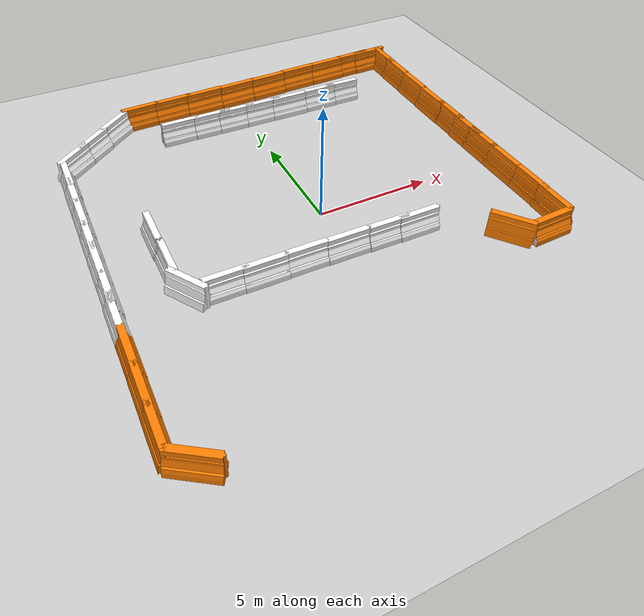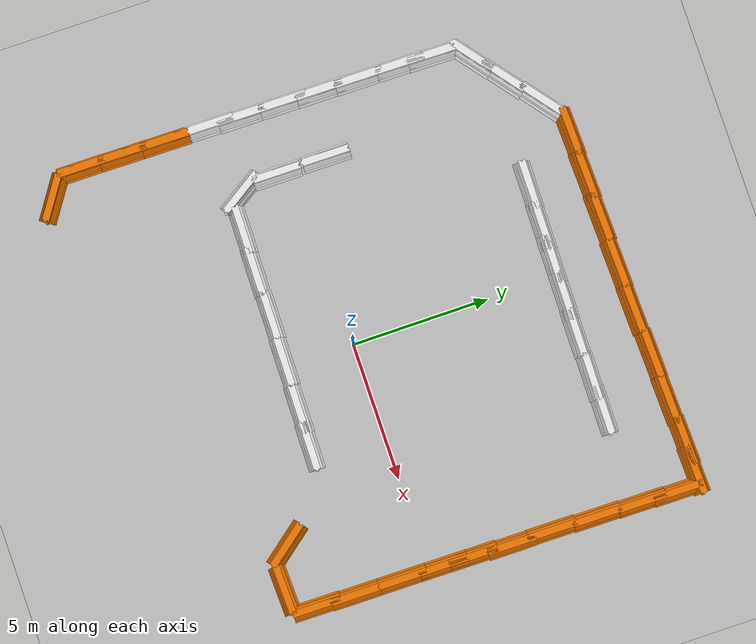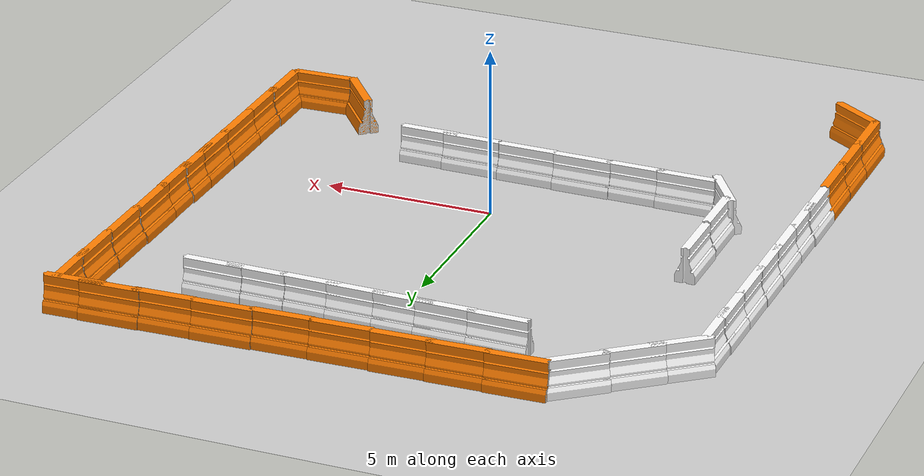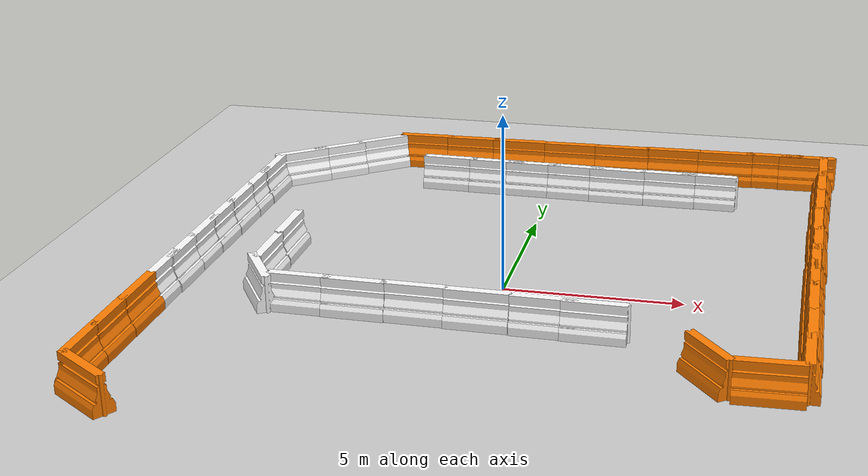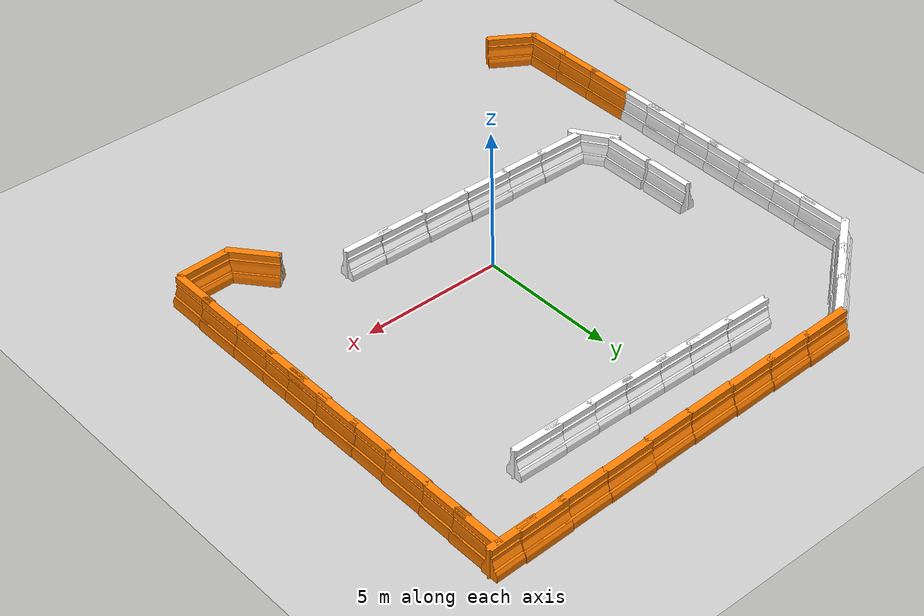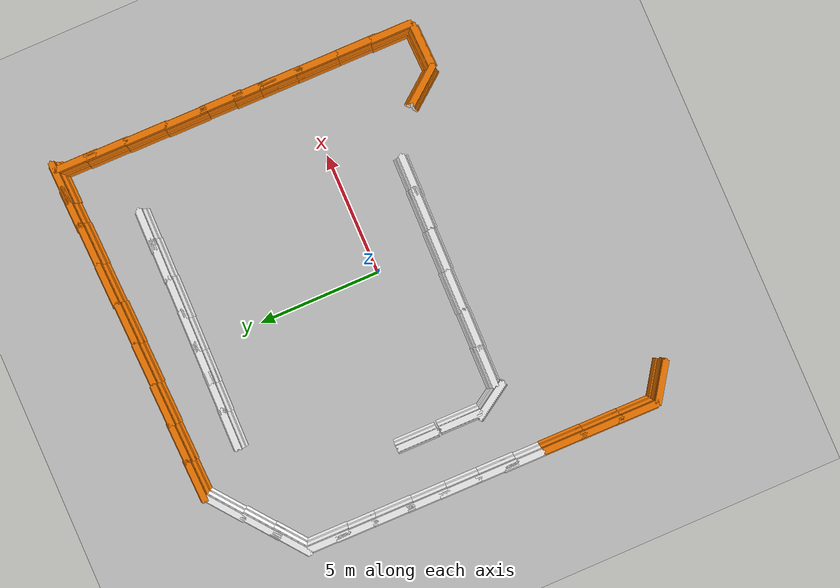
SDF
<sdf version="1.7">
 <world name="default">
  <light name="sun" type="directional">
   <pose>0 0 10 0 -0 0</pose>
   <diffuse>0.8 0.8 0.8 1</diffuse>
   <specular>0.2 0.2 0.2 1</specular>
   <attenuation>
    <range>1000</range>
    <constant>0.9</constant>
    <linear>0.01</linear>
    <quadratic>0.001</quadratic>
   </attenuation>
   <direction>-0.5 0.1 -0.9</direction>
   <spot><inner_angle>0</inner_angle><outer_angle>0</outer_angle><falloff>0</falloff></spot>
  </light>
  <model name="ground_plane">
   <static>1</static>
   <link name="link">
    <collision name="collision">
     <geometry><plane><normal>0 0 1</normal><size>100 100</size></plane></geometry>
     <surface><friction><ode><mu>100</mu><mu2>50</mu2></ode></friction></surface>
    </collision>
    <visual name="visual">
     <cast_shadows>0</cast_shadows>
     <geometry><plane><normal>0 0 1</normal><size>100 100</size></plane></geometry>
     <material>
      <script><uri>file://media/materials/scripts/gazebo.material</uri><name>Gazebo/Grey</name></script>
     </material>
    </visual>
   </link>
  </model>
  <gravity>0 0 -9.8</gravity>
  <magnetic_field>6e-06 2.3e-05 -4.2e-05</magnetic_field>
  <atmosphere type="adiabatic"/>
  <physics type="ode">
   <max_step_size>0.001</max_step_size>
   <real_time_factor>1</real_time_factor>
   <real_time_update_rate>1000</real_time_update_rate>
  </physics>
  <scene><ambient>0.4 0.4 0.4 1</ambient><background>0.7 0.7 0.7 1</background><shadows>1</shadows></scene>
  <spherical_coordinates>
   <surface_model>EARTH_WGS84</surface_model>
   <latitude_deg>0</latitude_deg>
   <longitude_deg>0</longitude_deg>
   <elevation>0</elevation>
   <heading_deg>0</heading_deg>
  </spherical_coordinates>
  <model name="drc_practice_organge_jersey_barrier_clone_0">
   <static>1</static>
   <link name="link">
    <visual name="visual">
     <geometry>
      <mesh><uri>model://drc_practice_orange_jersey_barrier/meshes/jersey_barrier.dae</uri></mesh>
     </geometry>
    </visual>
    <collision name="collision">
     <geometry>
      <mesh><uri>model://drc_practice_orange_jersey_barrier/meshes/jersey_barrier.dae</uri></mesh>
     </geometry>
    </collision>
   </link>
   <pose>-3.02649 9.66264 0 0 -0 1.60557</pose>
  </model>
  <model name="drc_practice_organge_jersey_barrier_clone_1">
   <static>1</static>
   <link name="link">
    <visual name="visual">
     <geometry>
      <mesh><uri>model://drc_practice_orange_jersey_barrier/meshes/jersey_barrier.dae</uri></mesh>
     </geometry>
    </visual>
    <collision name="collision">
     <geometry>
      <mesh><uri>model://drc_practice_orange_jersey_barrier/meshes/jersey_barrier.dae</uri></mesh>
     </geometry>
    </collision>
   </link>
   <pose>-1.44785 9.68082 0 0 -0 1.60557</pose>
  </model>
  <model name="drc_practice_organge_jersey_barrier_clone_2">
   <static>1</static>
   <link name="link">
    <visual name="visual">
     <geometry>
      <mesh><uri>model://drc_practice_orange_jersey_barrier/meshes/jersey_barrier.dae</uri></mesh>
     </geometry>
    </visual>
    <collision name="collision">
     <geometry>
      <mesh><uri>model://drc_practice_orange_jersey_barrier/meshes/jersey_barrier.dae</uri></mesh>
     </geometry>
    </collision>
   </link>
   <pose>0.297516 9.6936 0 0 -0 1.60557</pose>
  </model>
  <model name="drc_practice_organge_jersey_barrier_clone_3">
   <static>1</static>
   <link name="link">
    <visual name="visual">
     <geometry>
      <mesh><uri>model://drc_practice_orange_jersey_barrier/meshes/jersey_barrier.dae</uri></mesh>
     </geometry>
    </visual>
    <collision name="collision">
     <geometry>
      <mesh><uri>model://drc_practice_orange_jersey_barrier/meshes/jersey_barrier.dae</uri></mesh>
     </geometry>
    </collision>
   </link>
   <pose>1.99063 9.72333 0 0 -0 1.60557</pose>
  </model>
  <model name="drc_practice_organge_jersey_barrier_clone_4">
   <static>1</static>
   <link name="link">
    <visual name="visual">
     <geometry>
      <mesh><uri>model://drc_practice_orange_jersey_barrier/meshes/jersey_barrier.dae</uri></mesh>
     </geometry>
    </visual>
    <collision name="collision">
     <geometry>
      <mesh><uri>model://drc_practice_orange_jersey_barrier/meshes/jersey_barrier.dae</uri></mesh>
     </geometry>
    </collision>
   </link>
   <pose>3.67816 9.81078 0 0 -0 1.60557</pose>
  </model>
  <model name="drc_practice_organge_jersey_barrier_clone_5">
   <static>1</static>
   <link name="link">
    <visual name="visual">
     <geometry>
      <mesh><uri>model://drc_practice_orange_jersey_barrier/meshes/jersey_barrier.dae</uri></mesh>
     </geometry>
    </visual>
    <collision name="collision">
     <geometry>
      <mesh><uri>model://drc_practice_orange_jersey_barrier/meshes/jersey_barrier.dae</uri></mesh>
     </geometry>
    </collision>
   </link>
   <pose>5.39564 9.84492 0 0 -0 1.60557</pose>
  </model>
  <model name="drc_practice_organge_jersey_barrier_clone_10">
   <static>1</static>
   <link name="link">
    <visual name="visual">
     <geometry>
      <mesh><uri>model://drc_practice_orange_jersey_barrier/meshes/jersey_barrier.dae</uri></mesh>
     </geometry>
    </visual>
    <collision name="collision">
     <geometry>
      <mesh><uri>model://drc_practice_orange_jersey_barrier/meshes/jersey_barrier.dae</uri></mesh>
     </geometry>
    </collision>
   </link>
   <pose>5.95251 -4.45042 0 0 -0 0.674723</pose>
  </model>
  <model name="drc_practice_organge_jersey_barrier_clone_11">
   <static>1</static>
   <link name="link">
    <visual name="visual">
     <geometry>
      <mesh><uri>model://drc_practice_orange_jersey_barrier/meshes/jersey_barrier.dae</uri></mesh>
     </geometry>
    </visual>
    <collision name="collision">
     <geometry>
      <mesh><uri>model://drc_practice_orange_jersey_barrier/meshes/jersey_barrier.dae</uri></mesh>
     </geometry>
    </collision>
   </link>
   <pose>7.41453 -5.03428 0 0 -0 1.60557</pose>
  </model>
  <model name="drc_practice_organge_jersey_barrier_2_clone">
   <static>1</static>
   <link name="link">
    <visual name="visual">
     <geometry>
      <mesh><uri>model://drc_practice_orange_jersey_barrier/meshes/jersey_barrier.dae</uri></mesh>
     </geometry>
    </visual>
    <collision name="collision">
     <geometry>
      <mesh><uri>model://drc_practice_orange_jersey_barrier/meshes/jersey_barrier.dae</uri></mesh>
     </geometry>
    </collision>
   </link>
   <pose>8.32513 -4.14328 0 0 -0 0</pose>
  </model>
  <model name="drc_practice_organge_jersey_barrier_2_clone_0">
   <static>1</static>
   <link name="link">
    <visual name="visual">
     <geometry>
      <mesh><uri>model://drc_practice_orange_jersey_barrier/meshes/jersey_barrier.dae</uri></mesh>
     </geometry>
    </visual>
    <collision name="collision">
     <geometry>
      <mesh><uri>model://drc_practice_orange_jersey_barrier/meshes/jersey_barrier.dae</uri></mesh>
     </geometry>
    </collision>
   </link>
   <pose>8.36213 -2.72465 0 0 -0 0</pose>
  </model>
  <model name="drc_practice_organge_jersey_barrier_2_clone_1">
   <static>1</static>
   <link name="link">
    <visual name="visual">
     <geometry>
      <mesh><uri>model://drc_practice_orange_jersey_barrier/meshes/jersey_barrier.dae</uri></mesh>
     </geometry>
    </visual>
    <collision name="collision">
     <geometry>
      <mesh><uri>model://drc_practice_orange_jersey_barrier/meshes/jersey_barrier.dae</uri></mesh>
     </geometry>
    </collision>
   </link>
   <pose>8.36656 -0.993456 0 0 -0 0</pose>
  </model>
  <model name="drc_practice_organge_jersey_barrier_2_clone_2">
   <static>1</static>
   <link name="link">
    <visual name="visual">
     <geometry>
      <mesh><uri>model://drc_practice_orange_jersey_barrier/meshes/jersey_barrier.dae</uri></mesh>
     </geometry>
    </visual>
    <collision name="collision">
     <geometry>
      <mesh><uri>model://drc_practice_orange_jersey_barrier/meshes/jersey_barrier.dae</uri></mesh>
     </geometry>
    </collision>
   </link>
   <pose>8.38099 0.514424 0 0 -0 0</pose>
  </model>
  <model name="drc_practice_organge_jersey_barrier_2_clone_3">
   <static>1</static>
   <link name="link">
    <visual name="visual">
     <geometry>
      <mesh><uri>model://drc_practice_orange_jersey_barrier/meshes/jersey_barrier.dae</uri></mesh>
     </geometry>
    </visual>
    <collision name="collision">
     <geometry>
      <mesh><uri>model://drc_practice_orange_jersey_barrier/meshes/jersey_barrier.dae</uri></mesh>
     </geometry>
    </collision>
   </link>
   <pose>8.39415 1.6096 0 0 -0 0</pose>
  </model>
  <model name="drc_practice_organge_jersey_barrier_2_clone_4">
   <static>1</static>
   <link name="link">
    <visual name="visual">
     <geometry>
      <mesh><uri>model://drc_practice_orange_jersey_barrier/meshes/jersey_barrier.dae</uri></mesh>
     </geometry>
    </visual>
    <collision name="collision">
     <geometry>
      <mesh><uri>model://drc_practice_orange_jersey_barrier/meshes/jersey_barrier.dae</uri></mesh>
     </geometry>
    </collision>
   </link>
   <pose>8.44175 3.00351 0 0 -0 0</pose>
  </model>
  <model name="drc_practice_organge_jersey_barrier_2_clone_5">
   <static>1</static>
   <link name="link">
    <visual name="visual">
     <geometry>
      <mesh><uri>model://drc_practice_orange_jersey_barrier/meshes/jersey_barrier.dae</uri></mesh>
     </geometry>
    </visual>
    <collision name="collision">
     <geometry>
      <mesh><uri>model://drc_practice_orange_jersey_barrier/meshes/jersey_barrier.dae</uri></mesh>
     </geometry>
    </collision>
   </link>
   <pose>8.43429 4.5052 0 0 -0 0</pose>
  </model>
  <model name="drc_practice_organge_jersey_barrier_2_clone_6">
   <static>1</static>
   <link name="link">
    <visual name="visual">
     <geometry>
      <mesh><uri>model://drc_practice_orange_jersey_barrier/meshes/jersey_barrier.dae</uri></mesh>
     </geometry>
    </visual>
    <collision name="collision">
     <geometry>
      <mesh><uri>model://drc_practice_orange_jersey_barrier/meshes/jersey_barrier.dae</uri></mesh>
     </geometry>
    </collision>
   </link>
   <pose>8.47465 6.15354 0 0 -0 0</pose>
  </model>
  <model name="drc_practice_organge_jersey_barrier_2_clone_7">
   <static>1</static>
   <link name="link">
    <visual name="visual">
     <geometry>
      <mesh><uri>model://drc_practice_orange_jersey_barrier/meshes/jersey_barrier.dae</uri></mesh>
     </geometry>
    </visual>
    <collision name="collision">
     <geometry>
      <mesh><uri>model://drc_practice_orange_jersey_barrier/meshes/jersey_barrier.dae</uri></mesh>
     </geometry>
    </collision>
   </link>
   <pose>8.50919 7.81032 0 0 -0 0</pose>
  </model>
  <model name="drc_practice_organge_jersey_barrier_2_clone_8">
   <static>1</static>
   <link name="link">
    <visual name="visual">
     <geometry>
      <mesh><uri>model://drc_practice_orange_jersey_barrier/meshes/jersey_barrier.dae</uri></mesh>
     </geometry>
    </visual>
    <collision name="collision">
     <geometry>
      <mesh><uri>model://drc_practice_orange_jersey_barrier/meshes/jersey_barrier.dae</uri></mesh>
     </geometry>
    </collision>
   </link>
   <pose>8.54199 9.1117 0 0 -0 0</pose>
  </model>
  <model name="drc_practice_organge_jersey_barrier_clone_10_clone">
   <static>1</static>
   <link name="link">
    <visual name="visual">
     <geometry>
      <mesh><uri>model://drc_practice_orange_jersey_barrier/meshes/jersey_barrier.dae</uri></mesh>
     </geometry>
    </visual>
    <collision name="collision">
     <geometry>
      <mesh><uri>model://drc_practice_orange_jersey_barrier/meshes/jersey_barrier.dae</uri></mesh>
     </geometry>
    </collision>
   </link>
   <pose>6.95366 9.92012 0 0 -0 1.60557</pose>
  </model>
  <model name="drc_practice_organge_jersey_barrier_clone_10_clone_0">
   <static>1</static>
   <link name="link">
    <visual name="visual">
     <geometry>
      <mesh><uri>model://drc_practice_orange_jersey_barrier/meshes/jersey_barrier.dae</uri></mesh>
     </geometry>
    </visual>
    <collision name="collision">
     <geometry>
      <mesh><uri>model://drc_practice_orange_jersey_barrier/meshes/jersey_barrier.dae</uri></mesh>
     </geometry>
    </collision>
   </link>
   <pose>8.00924 9.91532 0 0 -0 1.60557</pose>
  </model>
  <model name="drc_practice_white_jersey_barrier">
   <static>1</static>
   <link name="link">
    <visual name="visual">
     <geometry>
      <mesh><uri>model://drc_practice_white_jersey_barrier/meshes/jersey_barrier.dae</uri></mesh>
     </geometry>
    </visual>
    <collision name="collision">
     <geometry>
      <mesh><uri>model://drc_practice_white_jersey_barrier/meshes/jersey_barrier.dae</uri></mesh>
     </geometry>
    </collision>
   </link>
   <pose>-8.77723 5.87423 0 0 -0 0</pose>
  </model>
  <model name="drc_practice_white_jersey_barrier_clone">
   <static>1</static>
   <link name="link">
    <visual name="visual">
     <geometry>
      <mesh><uri>model://drc_practice_white_jersey_barrier/meshes/jersey_barrier.dae</uri></mesh>
     </geometry>
    </visual>
    <collision name="collision">
     <geometry>
      <mesh><uri>model://drc_practice_white_jersey_barrier/meshes/jersey_barrier.dae</uri></mesh>
     </geometry>
    </collision>
   </link>
   <pose>-8.80459 4.72124 0 0 -0 0</pose>
  </model>
  <model name="drc_practice_white_jersey_barrier_clone_0">
   <static>1</static>
   <link name="link">
    <visual name="visual">
     <geometry>
      <mesh><uri>model://drc_practice_white_jersey_barrier/meshes/jersey_barrier.dae</uri></mesh>
     </geometry>
    </visual>
    <collision name="collision">
     <geometry>
      <mesh><uri>model://drc_practice_white_jersey_barrier/meshes/jersey_barrier.dae</uri></mesh>
     </geometry>
    </collision>
   </link>
   <pose>-8.81543 3.17061 0 0 -0 0</pose>
  </model>
  <model name="drc_practice_white_jersey_barrier_clone_1">
   <static>1</static>
   <link name="link">
    <visual name="visual">
     <geometry>
      <mesh><uri>model://drc_practice_white_jersey_barrier/meshes/jersey_barrier.dae</uri></mesh>
     </geometry>
    </visual>
    <collision name="collision">
     <geometry>
      <mesh><uri>model://drc_practice_white_jersey_barrier/meshes/jersey_barrier.dae</uri></mesh>
     </geometry>
    </collision>
   </link>
   <pose>-8.8371 1.74032 0 0 -0 0</pose>
  </model>
  <model name="drc_practice_white_jersey_barrier_clone_2">
   <static>1</static>
   <link name="link">
    <visual name="visual">
     <geometry>
      <mesh><uri>model://drc_practice_white_jersey_barrier/meshes/jersey_barrier.dae</uri></mesh>
     </geometry>
    </visual>
    <collision name="collision">
     <geometry>
      <mesh><uri>model://drc_practice_white_jersey_barrier/meshes/jersey_barrier.dae</uri></mesh>
     </geometry>
    </collision>
   </link>
   <pose>-8.85404 0.386006 0 0 -0 0</pose>
  </model>
  <model name="drc_practice_white_jersey_barrier_clone_3">
   <static>1</static>
   <link name="link">
    <visual name="visual">
     <geometry>
      <mesh><uri>model://drc_practice_white_jersey_barrier/meshes/jersey_barrier.dae</uri></mesh>
     </geometry>
    </visual>
    <collision name="collision">
     <geometry>
      <mesh><uri>model://drc_practice_white_jersey_barrier/meshes/jersey_barrier.dae</uri></mesh>
     </geometry>
    </collision>
   </link>
   <pose>-8.86356 -1.15416 0 0 -0 0</pose>
  </model>
  <model name="drc_practice_white_jersey_barrier_clone_4">
   <static>1</static>
   <link name="link">
    <visual name="visual">
     <geometry>
      <mesh><uri>model://drc_practice_white_jersey_barrier/meshes/jersey_barrier.dae</uri></mesh>
     </geometry>
    </visual>
    <collision name="collision">
     <geometry>
      <mesh><uri>model://drc_practice_white_jersey_barrier/meshes/jersey_barrier.dae</uri></mesh>
     </geometry>
    </collision>
   </link>
   <pose>-8.8998 -2.31841 0 0 -0 0</pose>
  </model>
  <model name="drc_practice_white_jersey_barrier_clone_6_clone">
   <static>1</static>
   <link name="link">
    <visual name="visual">
     <geometry>
      <mesh><uri>model://drc_practice_white_jersey_barrier/meshes/jersey_barrier.dae</uri></mesh>
     </geometry>
    </visual>
    <collision name="collision">
     <geometry>
      <mesh><uri>model://drc_practice_white_jersey_barrier/meshes/jersey_barrier.dae</uri></mesh>
     </geometry>
    </collision>
   </link>
   <pose>-3.33547 7.651 0 0 -0 1.56477</pose>
  </model>
  <model name="drc_practice_white_jersey_barrier_clone_6_clone_0">
   <static>1</static>
   <link name="link">
    <visual name="visual">
     <geometry>
      <mesh><uri>model://drc_practice_white_jersey_barrier/meshes/jersey_barrier.dae</uri></mesh>
     </geometry>
    </visual>
    <collision name="collision">
     <geometry>
      <mesh><uri>model://drc_practice_white_jersey_barrier/meshes/jersey_barrier.dae</uri></mesh>
     </geometry>
    </collision>
   </link>
   <pose>-1.80606 7.61466 0 0 -0 1.56477</pose>
  </model>
  <model name="drc_practice_white_jersey_barrier_clone_6_clone_1">
   <static>1</static>
   <link name="link">
    <visual name="visual">
     <geometry>
      <mesh><uri>model://drc_practice_white_jersey_barrier/meshes/jersey_barrier.dae</uri></mesh>
     </geometry>
    </visual>
    <collision name="collision">
     <geometry>
      <mesh><uri>model://drc_practice_white_jersey_barrier/meshes/jersey_barrier.dae</uri></mesh>
     </geometry>
    </collision>
   </link>
   <pose>-0.595016 7.58825 0 0 -0 1.56477</pose>
  </model>
  <model name="drc_practice_white_jersey_barrier_clone_6_clone_2">
   <static>1</static>
   <link name="link">
    <visual name="visual">
     <geometry>
      <mesh><uri>model://drc_practice_white_jersey_barrier/meshes/jersey_barrier.dae</uri></mesh>
     </geometry>
    </visual>
    <collision name="collision">
     <geometry>
      <mesh><uri>model://drc_practice_white_jersey_barrier/meshes/jersey_barrier.dae</uri></mesh>
     </geometry>
    </collision>
   </link>
   <pose>0.773415 7.57212 0 0 -0 1.56477</pose>
  </model>
  <model name="drc_practice_white_jersey_barrier_clone_6_clone_3">
   <static>1</static>
   <link name="link">
    <visual name="visual">
     <geometry>
      <mesh><uri>model://drc_practice_white_jersey_barrier/meshes/jersey_barrier.dae</uri></mesh>
     </geometry>
    </visual>
    <collision name="collision">
     <geometry>
      <mesh><uri>model://drc_practice_white_jersey_barrier/meshes/jersey_barrier.dae</uri></mesh>
     </geometry>
    </collision>
   </link>
   <pose>2.13654 7.54069 0 0 -0 1.56477</pose>
  </model>
  <model name="drc_practice_white_jersey_barrier_clone_6_clone_4">
   <static>1</static>
   <link name="link">
    <visual name="visual">
     <geometry>
      <mesh><uri>model://drc_practice_white_jersey_barrier/meshes/jersey_barrier.dae</uri></mesh>
     </geometry>
    </visual>
    <collision name="collision">
     <geometry>
      <mesh><uri>model://drc_practice_white_jersey_barrier/meshes/jersey_barrier.dae</uri></mesh>
     </geometry>
    </collision>
   </link>
   <pose>3.7446 7.55043 0 0 -0 1.56477</pose>
  </model>
  <model name="drc_practice_white_jersey_barrier_clone_6_clone_5">
   <static>1</static>
   <link name="link">
    <visual name="visual">
     <geometry>
      <mesh><uri>model://drc_practice_white_jersey_barrier/meshes/jersey_barrier.dae</uri></mesh>
     </geometry>
    </visual>
    <collision name="collision">
     <geometry>
      <mesh><uri>model://drc_practice_white_jersey_barrier/meshes/jersey_barrier.dae</uri></mesh>
     </geometry>
    </collision>
   </link>
   <pose>5.01463 7.56097 0 0 -0 1.56477</pose>
  </model>
  <model name="drc_practice_white_jersey_barrier_clone_5_clone_0">
   <static>1</static>
   <link name="link">
    <visual name="visual">
     <geometry>
      <mesh><uri>model://drc_practice_white_jersey_barrier/meshes/jersey_barrier.dae</uri></mesh>
     </geometry>
    </visual>
    <collision name="collision">
     <geometry>
      <mesh><uri>model://drc_practice_white_jersey_barrier/meshes/jersey_barrier.dae</uri></mesh>
     </geometry>
    </collision>
   </link>
   <pose>-6.54585 -0.62994 0 0 -0 0</pose>
  </model>
  <model name="drc_practice_white_jersey_barrier_clone_5_clone_1">
   <static>1</static>
   <link name="link">
    <visual name="visual">
     <geometry>
      <mesh><uri>model://drc_practice_white_jersey_barrier/meshes/jersey_barrier.dae</uri></mesh>
     </geometry>
    </visual>
    <collision name="collision">
     <geometry>
      <mesh><uri>model://drc_practice_white_jersey_barrier/meshes/jersey_barrier.dae</uri></mesh>
     </geometry>
    </collision>
   </link>
   <pose>-6.56683 1.1995 0 0 -0 0</pose>
  </model>
  <model name="drc_practice_white_jersey_barrier_clone_6_clone_9_clone">
   <static>1</static>
   <link name="link">
    <visual name="visual">
     <geometry>
      <mesh><uri>model://drc_practice_white_jersey_barrier/meshes/jersey_barrier.dae</uri></mesh>
     </geometry>
    </visual>
    <collision name="collision">
     <geometry>
      <mesh><uri>model://drc_practice_white_jersey_barrier/meshes/jersey_barrier.dae</uri></mesh>
     </geometry>
    </collision>
   </link>
   <pose>2.91485 -2.59282 0 0 -0 1.56477</pose>
  </model>
  <model name="drc_practice_white_jersey_barrier_clone_6_clone_9_clone_0">
   <static>1</static>
   <link name="link">
    <visual name="visual">
     <geometry>
      <mesh><uri>model://drc_practice_white_jersey_barrier/meshes/jersey_barrier.dae</uri></mesh>
     </geometry>
    </visual>
    <collision name="collision">
     <geometry>
      <mesh><uri>model://drc_practice_white_jersey_barrier/meshes/jersey_barrier.dae</uri></mesh>
     </geometry>
    </collision>
   </link>
   <pose>1.58137 -2.54841 0 0 -0 1.56477</pose>
  </model>
  <model name="drc_practice_white_jersey_barrier_clone_6_clone_9_clone_0_clone">
   <static>1</static>
   <link name="link">
    <visual name="visual">
     <geometry>
      <mesh><uri>model://drc_practice_white_jersey_barrier/meshes/jersey_barrier.dae</uri></mesh>
     </geometry>
    </visual>
    <collision name="collision">
     <geometry>
      <mesh><uri>model://drc_practice_white_jersey_barrier/meshes/jersey_barrier.dae</uri></mesh>
     </geometry>
    </collision>
   </link>
   <pose>-0.173518 -2.49485 0 0 -0 1.56477</pose>
  </model>
  <model name="drc_practice_white_jersey_barrier_clone_6_clone_9_clone_0_clone_0">
   <static>1</static>
   <link name="link">
    <visual name="visual">
     <geometry>
      <mesh><uri>model://drc_practice_white_jersey_barrier/meshes/jersey_barrier.dae</uri></mesh>
     </geometry>
    </visual>
    <collision name="collision">
     <geometry>
      <mesh><uri>model://drc_practice_white_jersey_barrier/meshes/jersey_barrier.dae</uri></mesh>
     </geometry>
    </collision>
   </link>
   <pose>-1.88232 -2.4458 0 0 -0 1.56477</pose>
  </model>
  <model name="drc_practice_white_jersey_barrier_clone_6_clone_9_clone_0_clone_1">
   <static>1</static>
   <link name="link">
    <visual name="visual">
     <geometry>
      <mesh><uri>model://drc_practice_white_jersey_barrier/meshes/jersey_barrier.dae</uri></mesh>
     </geometry>
    </visual>
    <collision name="collision">
     <geometry>
      <mesh><uri>model://drc_practice_white_jersey_barrier/meshes/jersey_barrier.dae</uri></mesh>
     </geometry>
    </collision>
   </link>
   <pose>-3.50882 -2.45068 0 0 -0 1.56477</pose>
  </model>
  <model name="drc_practice_white_jersey_barrier_clone_6_clone_9_clone_0_clone_2">
   <static>1</static>
   <link name="link">
    <visual name="visual">
     <geometry>
      <mesh><uri>model://drc_practice_white_jersey_barrier/meshes/jersey_barrier.dae</uri></mesh>
     </geometry>
    </visual>
    <collision name="collision">
     <geometry>
      <mesh><uri>model://drc_practice_white_jersey_barrier/meshes/jersey_barrier.dae</uri></mesh>
     </geometry>
    </collision>
   </link>
   <pose>-5.04083 -2.41255 0 0 -0 1.56477</pose>
  </model>
  <model name="drc_practice_white_jersey_barrier_clone_6_clone_9_clone_0_clone_3">
   <static>1</static>
   <link name="link">
    <visual name="visual">
     <geometry>
      <mesh><uri>model://drc_practice_white_jersey_barrier/meshes/jersey_barrier.dae</uri></mesh>
     </geometry>
    </visual>
    <collision name="collision">
     <geometry>
      <mesh><uri>model://drc_practice_white_jersey_barrier/meshes/jersey_barrier.dae</uri></mesh>
     </geometry>
    </collision>
   </link>
   <pose>-6.29323 -2.01225 0 0 -0 0.580339</pose>
  </model>
  <model name="drc_practice_organge_jersey_barrier">
   <static>1</static>
   <link name="link">
    <visual name="visual">
     <geometry>
      <mesh><uri>model://drc_practice_orange_jersey_barrier/meshes/jersey_barrier.dae</uri></mesh>
     </geometry>
    </visual>
    <collision name="collision">
     <geometry>
      <mesh><uri>model://drc_practice_orange_jersey_barrier/meshes/jersey_barrier.dae</uri></mesh>
     </geometry>
    </collision>
   </link>
   <pose>-8.89685 -3.98493 0 0 -0 0</pose>
  </model>
  <model name="drc_practice_organge_jersey_barrier_clone">
   <static>1</static>
   <link name="link">
    <visual name="visual">
     <geometry>
      <mesh><uri>model://drc_practice_orange_jersey_barrier/meshes/jersey_barrier.dae</uri></mesh>
     </geometry>
    </visual>
    <collision name="collision">
     <geometry>
      <mesh><uri>model://drc_practice_orange_jersey_barrier/meshes/jersey_barrier.dae</uri></mesh>
     </geometry>
    </collision>
   </link>
   <pose>-8.9124 -5.5417 0 0 -0 0</pose>
  </model>
  <model name="drc_practice_organge_jersey_barrier_clone_6">
   <static>1</static>
   <link name="link">
    <visual name="visual">
     <geometry>
      <mesh><uri>model://drc_practice_orange_jersey_barrier/meshes/jersey_barrier.dae</uri></mesh>
     </geometry>
    </visual>
    <collision name="collision">
     <geometry>
      <mesh><uri>model://drc_practice_orange_jersey_barrier/meshes/jersey_barrier.dae</uri></mesh>
     </geometry>
    </collision>
   </link>
   <pose>-8.92751 -7.0889 0 0 -0 0</pose>
  </model>
  <model name="drc_practice_organge_jersey_barrier_clone_7">
   <static>1</static>
   <link name="link">
    <visual name="visual">
     <geometry>
      <mesh><uri>model://drc_practice_orange_jersey_barrier/meshes/jersey_barrier.dae</uri></mesh>
     </geometry>
    </visual>
    <collision name="collision">
     <geometry>
      <mesh><uri>model://drc_practice_orange_jersey_barrier/meshes/jersey_barrier.dae</uri></mesh>
     </geometry>
    </collision>
   </link>
   <pose>-8.26509 -8.35287 0 0 -0 0.986169</pose>
  </model>
  <model name="drc_practice_white_jersey_barrier_clone_5">
   <static>1</static>
   <link name="link">
    <visual name="visual">
     <geometry>
      <mesh><uri>model://drc_practice_white_jersey_barrier/meshes/jersey_barrier.dae</uri></mesh>
     </geometry>
    </visual>
    <collision name="collision">
     <geometry>
      <mesh><uri>model://drc_practice_white_jersey_barrier/meshes/jersey_barrier.dae</uri></mesh>
     </geometry>
    </collision>
   </link>
   <pose>-8.25636 7.20624 0 0 0 -0.902235</pose>
  </model>
  <model name="drc_practice_white_jersey_barrier_clone_5_clone">
   <static>1</static>
   <link name="link">
    <visual name="visual">
     <geometry>
      <mesh><uri>model://drc_practice_white_jersey_barrier/meshes/jersey_barrier.dae</uri></mesh>
     </geometry>
    </visual>
    <collision name="collision">
     <geometry>
      <mesh><uri>model://drc_practice_white_jersey_barrier/meshes/jersey_barrier.dae</uri></mesh>
     </geometry>
    </collision>
   </link>
   <pose>-7.22945 8.03511 0 0 0 -0.902235</pose>
  </model>
  <model name="drc_practice_white_jersey_barrier_clone_5_clone_2">
   <static>1</static>
   <link name="link">
    <visual name="visual">
     <geometry>
      <mesh><uri>model://drc_practice_white_jersey_barrier/meshes/jersey_barrier.dae</uri></mesh>
     </geometry>
    </visual>
    <collision name="collision">
     <geometry>
      <mesh><uri>model://drc_practice_white_jersey_barrier/meshes/jersey_barrier.dae</uri></mesh>
     </geometry>
    </collision>
   </link>
   <pose>-6.03387 9.03206 0 0 0 -0.902235</pose>
  </model>
  <model name="drc_practice_organge_jersey_barrier_clone_0_clone">
   <static>1</static>
   <link name="link">
    <visual name="visual">
     <geometry>
      <mesh><uri>model://drc_practice_orange_jersey_barrier/meshes/jersey_barrier.dae</uri></mesh>
     </geometry>
    </visual>
    <collision name="collision">
     <geometry>
      <mesh><uri>model://drc_practice_orange_jersey_barrier/meshes/jersey_barrier.dae</uri></mesh>
     </geometry>
    </collision>
   </link>
   <pose>-4.64429 9.6434 0 0 -0 1.60557</pose>
  </model>
 </world>
</sdf>
